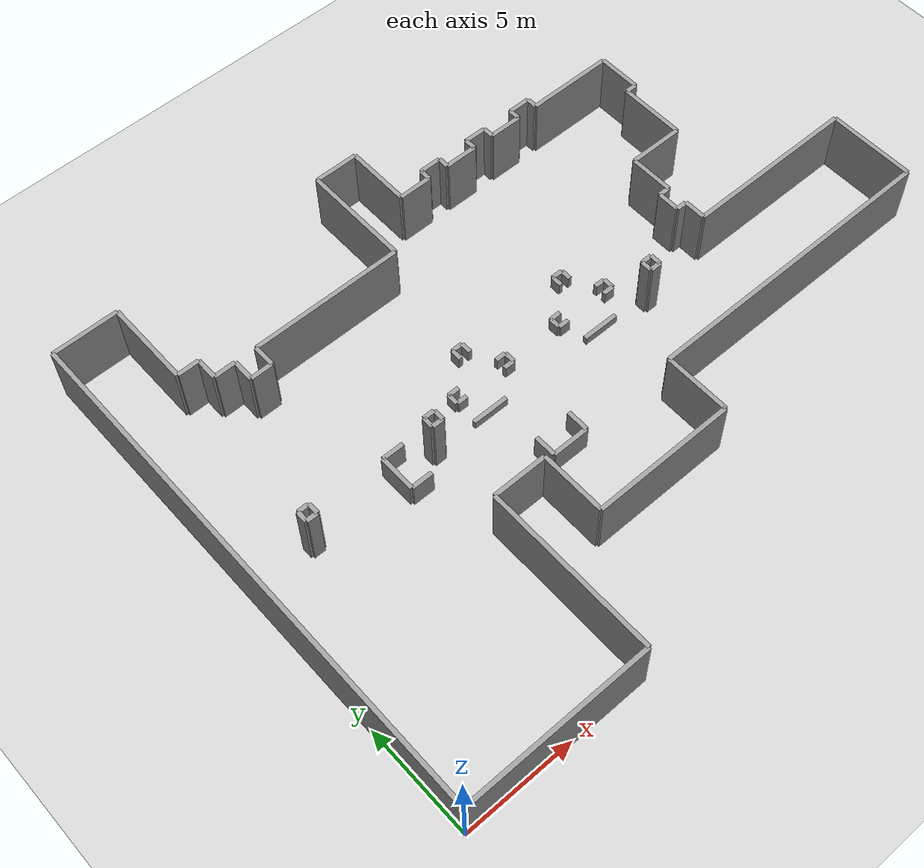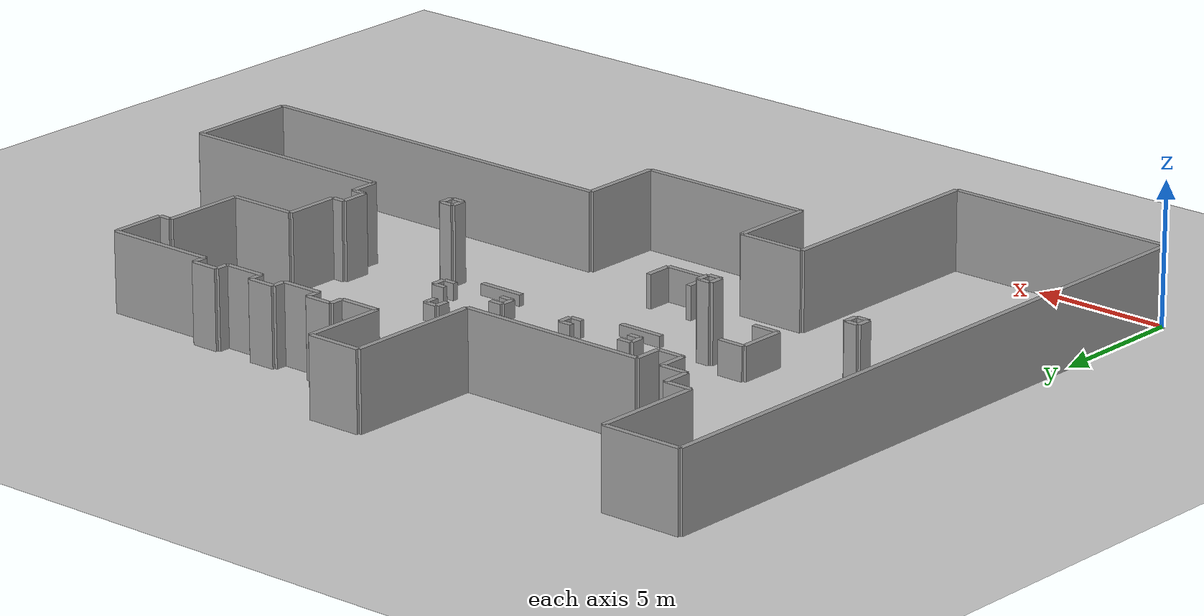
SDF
<sdf version="1.5">
 <world name="default">
  <include><uri>model://ground_plane</uri></include>
  <include><uri>model://sun</uri></include>
  <model name="grey_wall_1">
   <static>1</static>
   <link name="link">
    <pose>0.0 12.0  1.4 0 0 1.57</pose>
    <collision name="collision"><geometry><box><size>24.0 .2  2.8</size></box></geometry></collision>
    <visual name="visual">
     <cast_shadows>0</cast_shadows>
     <geometry><box><size>24.0 .2  2.8</size></box></geometry>
     <material>
      <script>
       <uri>model://grey_wall/materials/scripts</uri>
       <uri>model://grey_wall/materials/textures</uri>
       <name>vrc/grey_wall</name>
      </script>
     </material>
    </visual>
   </link>
  </model>
  <model name="grey_wall_2">
   <static>1</static>
   <link name="link">
    <pose>4.25 0.0  1.4 0 0 0.0</pose>
    <collision name="collision"><geometry><box><size>8.5 .2  2.8</size></box></geometry></collision>
    <visual name="visual">
     <cast_shadows>0</cast_shadows>
     <geometry><box><size>8.5 .2  2.8</size></box></geometry>
     <material>
      <script>
       <uri>model://grey_wall/materials/scripts</uri>
       <uri>model://grey_wall/materials/textures</uri>
       <name>vrc/grey_wall</name>
      </script>
     </material>
    </visual>
   </link>
  </model>
  <model name="grey_wall_3">
   <static>1</static>
   <link name="link">
    <pose>8.5 4.0  1.4 0 0 1.57</pose>
    <collision name="collision"><geometry><box><size>8.0 .2  2.8</size></box></geometry></collision>
    <visual name="visual">
     <cast_shadows>0</cast_shadows>
     <geometry><box><size>8.0 .2  2.8</size></box></geometry>
     <material>
      <script>
       <uri>model://grey_wall/materials/scripts</uri>
       <uri>model://grey_wall/materials/textures</uri>
       <name>vrc/grey_wall</name>
      </script>
     </material>
    </visual>
   </link>
  </model>
  <model name="grey_wall_4">
   <static>1</static>
   <link name="link">
    <pose>9.75 8.0  1.4 0 0 0.0</pose>
    <collision name="collision"><geometry><box><size>2.5 .2  2.8</size></box></geometry></collision>
    <visual name="visual">
     <cast_shadows>0</cast_shadows>
     <geometry><box><size>2.5 .2  2.8</size></box></geometry>
     <material>
      <script>
       <uri>model://grey_wall/materials/scripts</uri>
       <uri>model://grey_wall/materials/textures</uri>
       <name>vrc/grey_wall</name>
      </script>
     </material>
    </visual>
   </link>
  </model>
  <model name="grey_wall_5">
   <static>1</static>
   <link name="link">
    <pose>11.0 6.5  1.4 0 0 1.57</pose>
    <collision name="collision"><geometry><box><size>3.0 .2  2.8</size></box></geometry></collision>
    <visual name="visual">
     <cast_shadows>0</cast_shadows>
     <geometry><box><size>3.0 .2  2.8</size></box></geometry>
     <material>
      <script>
       <uri>model://grey_wall/materials/scripts</uri>
       <uri>model://grey_wall/materials/textures</uri>
       <name>vrc/grey_wall</name>
      </script>
     </material>
    </visual>
   </link>
  </model>
  <model name="grey_wall_6">
   <static>1</static>
   <link name="link">
    <pose>14.25 5.0  1.4 0 0 0.0</pose>
    <collision name="collision"><geometry><box><size>6.5 .2  2.8</size></box></geometry></collision>
    <visual name="visual">
     <cast_shadows>0</cast_shadows>
     <geometry><box><size>6.5 .2  2.8</size></box></geometry>
     <material>
      <script>
       <uri>model://grey_wall/materials/scripts</uri>
       <uri>model://grey_wall/materials/textures</uri>
       <name>vrc/grey_wall</name>
      </script>
     </material>
    </visual>
   </link>
  </model>
  <model name="grey_wall_7">
   <static>1</static>
   <link name="link">
    <pose>17.5 6.5  1.4 0 0 1.57</pose>
    <collision name="collision"><geometry><box><size>3.0 .2  2.8</size></box></geometry></collision>
    <visual name="visual">
     <cast_shadows>0</cast_shadows>
     <geometry><box><size>3.0 .2  2.8</size></box></geometry>
     <material>
      <script>
       <uri>model://grey_wall/materials/scripts</uri>
       <uri>model://grey_wall/materials/textures</uri>
       <name>vrc/grey_wall</name>
      </script>
     </material>
    </visual>
   </link>
  </model>
  <model name="grey_wall_8">
   <static>1</static>
   <link name="link">
    <pose>24.5 8.0  1.4 0 0 0.0</pose>
    <collision name="collision"><geometry><box><size>14.0 .2  2.8</size></box></geometry></collision>
    <visual name="visual">
     <cast_shadows>0</cast_shadows>
     <geometry><box><size>14.0 .2  2.8</size></box></geometry>
     <material>
      <script>
       <uri>model://grey_wall/materials/scripts</uri>
       <uri>model://grey_wall/materials/textures</uri>
       <name>vrc/grey_wall</name>
      </script>
     </material>
    </visual>
   </link>
  </model>
  <model name="grey_wall_9">
   <static>1</static>
   <link name="link">
    <pose>31.5 10.0  1.4 0 0 1.57</pose>
    <collision name="collision"><geometry><box><size>4.0 .2  2.8</size></box></geometry></collision>
    <visual name="visual">
     <cast_shadows>0</cast_shadows>
     <geometry><box><size>4.0 .2  2.8</size></box></geometry>
     <material>
      <script>
       <uri>model://grey_wall/materials/scripts</uri>
       <uri>model://grey_wall/materials/textures</uri>
       <name>vrc/grey_wall</name>
      </script>
     </material>
    </visual>
   </link>
  </model>
  <model name="grey_wall_10">
   <static>1</static>
   <link name="link">
    <pose>27.5 12.0  1.4 0 0 -0.0</pose>
    <collision name="collision"><geometry><box><size>8.0 .2  2.8</size></box></geometry></collision>
    <visual name="visual">
     <cast_shadows>0</cast_shadows>
     <geometry><box><size>8.0 .2  2.8</size></box></geometry>
     <material>
      <script>
       <uri>model://grey_wall/materials/scripts</uri>
       <uri>model://grey_wall/materials/textures</uri>
       <name>vrc/grey_wall</name>
      </script>
     </material>
    </visual>
   </link>
  </model>
  <model name="grey_wall_11">
   <static>1</static>
   <link name="link">
    <pose>23.5 12.5  1.4 0 0 1.57</pose>
    <collision name="collision"><geometry><box><size>1.0 .2  2.8</size></box></geometry></collision>
    <visual name="visual">
     <cast_shadows>0</cast_shadows>
     <geometry><box><size>1.0 .2  2.8</size></box></geometry>
     <material>
      <script>
       <uri>model://grey_wall/materials/scripts</uri>
       <uri>model://grey_wall/materials/textures</uri>
       <name>vrc/grey_wall</name>
      </script>
     </material>
    </visual>
   </link>
  </model>
  <model name="grey_wall_12">
   <static>1</static>
   <link name="link">
    <pose>23.25 13.0  1.4 0 0 -0.0</pose>
    <collision name="collision"><geometry><box><size>0.5 .2  2.8</size></box></geometry></collision>
    <visual name="visual">
     <cast_shadows>0</cast_shadows>
     <geometry><box><size>0.5 .2  2.8</size></box></geometry>
     <material>
      <script>
       <uri>model://grey_wall/materials/scripts</uri>
       <uri>model://grey_wall/materials/textures</uri>
       <name>vrc/grey_wall</name>
      </script>
     </material>
    </visual>
   </link>
  </model>
  <model name="grey_wall_13">
   <static>1</static>
   <link name="link">
    <pose>23.0 13.5  1.4 0 0 1.57</pose>
    <collision name="collision"><geometry><box><size>1.0 .2  2.8</size></box></geometry></collision>
    <visual name="visual">
     <cast_shadows>0</cast_shadows>
     <geometry><box><size>1.0 .2  2.8</size></box></geometry>
     <material>
      <script>
       <uri>model://grey_wall/materials/scripts</uri>
       <uri>model://grey_wall/materials/textures</uri>
       <name>vrc/grey_wall</name>
      </script>
     </material>
    </visual>
   </link>
  </model>
  <model name="grey_wall_14">
   <static>1</static>
   <link name="link">
    <pose>23.25 14.0  1.4 0 0 0.0</pose>
    <collision name="collision"><geometry><box><size>0.5 .2  2.8</size></box></geometry></collision>
    <visual name="visual">
     <cast_shadows>0</cast_shadows>
     <geometry><box><size>0.5 .2  2.8</size></box></geometry>
     <material>
      <script>
       <uri>model://grey_wall/materials/scripts</uri>
       <uri>model://grey_wall/materials/textures</uri>
       <name>vrc/grey_wall</name>
      </script>
     </material>
    </visual>
   </link>
  </model>
  <model name="grey_wall_15">
   <static>1</static>
   <link name="link">
    <pose>23.5 15.0  1.4 0 0 1.57</pose>
    <collision name="collision"><geometry><box><size>2.0 .2  2.8</size></box></geometry></collision>
    <visual name="visual">
     <cast_shadows>0</cast_shadows>
     <geometry><box><size>2.0 .2  2.8</size></box></geometry>
     <material>
      <script>
       <uri>model://grey_wall/materials/scripts</uri>
       <uri>model://grey_wall/materials/textures</uri>
       <name>vrc/grey_wall</name>
      </script>
     </material>
    </visual>
   </link>
  </model>
  <model name="grey_wall_16">
   <static>1</static>
   <link name="link">
    <pose>24.75 16.0  1.4 0 0 0.0</pose>
    <collision name="collision"><geometry><box><size>2.5 .2  2.8</size></box></geometry></collision>
    <visual name="visual">
     <cast_shadows>0</cast_shadows>
     <geometry><box><size>2.5 .2  2.8</size></box></geometry>
     <material>
      <script>
       <uri>model://grey_wall/materials/scripts</uri>
       <uri>model://grey_wall/materials/textures</uri>
       <name>vrc/grey_wall</name>
      </script>
     </material>
    </visual>
   </link>
  </model>
  <model name="grey_wall_17">
   <static>1</static>
   <link name="link">
    <pose>26.0 17.5  1.4 0 0 1.57</pose>
    <collision name="collision"><geometry><box><size>3.0 .2  2.8</size></box></geometry></collision>
    <visual name="visual">
     <cast_shadows>0</cast_shadows>
     <geometry><box><size>3.0 .2  2.8</size></box></geometry>
     <material>
      <script>
       <uri>model://grey_wall/materials/scripts</uri>
       <uri>model://grey_wall/materials/textures</uri>
       <name>vrc/grey_wall</name>
      </script>
     </material>
    </visual>
   </link>
  </model>
  <model name="grey_wall_18">
   <static>1</static>
   <link name="link">
    <pose>26.25 19.0  1.4 0 0 0.0</pose>
    <collision name="collision"><geometry><box><size>0.5 .2  2.8</size></box></geometry></collision>
    <visual name="visual">
     <cast_shadows>0</cast_shadows>
     <geometry><box><size>0.5 .2  2.8</size></box></geometry>
     <material>
      <script>
       <uri>model://grey_wall/materials/scripts</uri>
       <uri>model://grey_wall/materials/textures</uri>
       <name>vrc/grey_wall</name>
      </script>
     </material>
    </visual>
   </link>
  </model>
  <model name="grey_wall_19">
   <static>1</static>
   <link name="link">
    <pose>26.5 20.0  1.4 0 0 1.57</pose>
    <collision name="collision"><geometry><box><size>2.0 .2  2.8</size></box></geometry></collision>
    <visual name="visual">
     <cast_shadows>0</cast_shadows>
     <geometry><box><size>2.0 .2  2.8</size></box></geometry>
     <material>
      <script>
       <uri>model://grey_wall/materials/scripts</uri>
       <uri>model://grey_wall/materials/textures</uri>
       <name>vrc/grey_wall</name>
      </script>
     </material>
    </visual>
   </link>
  </model>
  <model name="grey_wall_20">
   <static>1</static>
   <link name="link">
    <pose>24.5 21.0  1.4 0 0 -0.0</pose>
    <collision name="collision"><geometry><box><size>4.0 .2  2.8</size></box></geometry></collision>
    <visual name="visual">
     <cast_shadows>0</cast_shadows>
     <geometry><box><size>4.0 .2  2.8</size></box></geometry>
     <material>
      <script>
       <uri>model://grey_wall/materials/scripts</uri>
       <uri>model://grey_wall/materials/textures</uri>
       <name>vrc/grey_wall</name>
      </script>
     </material>
    </visual>
   </link>
  </model>
  <model name="grey_wall_21">
   <static>1</static>
   <link name="link">
    <pose>22.5 21.25  1.4 0 0 1.57</pose>
    <collision name="collision"><geometry><box><size>0.5 .2  2.8</size></box></geometry></collision>
    <visual name="visual">
     <cast_shadows>0</cast_shadows>
     <geometry><box><size>0.5 .2  2.8</size></box></geometry>
     <material>
      <script>
       <uri>model://grey_wall/materials/scripts</uri>
       <uri>model://grey_wall/materials/textures</uri>
       <name>vrc/grey_wall</name>
      </script>
     </material>
    </visual>
   </link>
  </model>
  <model name="grey_wall_22">
   <static>1</static>
   <link name="link">
    <pose>22.0 21.5  1.4 0 0 -0.0</pose>
    <collision name="collision"><geometry><box><size>1.0 .2  2.8</size></box></geometry></collision>
    <visual name="visual">
     <cast_shadows>0</cast_shadows>
     <geometry><box><size>1.0 .2  2.8</size></box></geometry>
     <material>
      <script>
       <uri>model://grey_wall/materials/scripts</uri>
       <uri>model://grey_wall/materials/textures</uri>
       <name>vrc/grey_wall</name>
      </script>
     </material>
    </visual>
   </link>
  </model>
  <model name="grey_wall_23">
   <static>1</static>
   <link name="link">
    <pose>21.5 21.25  1.4 0 0 1.57</pose>
    <collision name="collision"><geometry><box><size>0.5 .2  2.8</size></box></geometry></collision>
    <visual name="visual">
     <cast_shadows>0</cast_shadows>
     <geometry><box><size>0.5 .2  2.8</size></box></geometry>
     <material>
      <script>
       <uri>model://grey_wall/materials/scripts</uri>
       <uri>model://grey_wall/materials/textures</uri>
       <name>vrc/grey_wall</name>
      </script>
     </material>
    </visual>
   </link>
  </model>
  <model name="grey_wall_24">
   <static>1</static>
   <link name="link">
    <pose>20.75 21.0  1.4 0 0 -0.0</pose>
    <collision name="collision"><geometry><box><size>1.5 .2  2.8</size></box></geometry></collision>
    <visual name="visual">
     <cast_shadows>0</cast_shadows>
     <geometry><box><size>1.5 .2  2.8</size></box></geometry>
     <material>
      <script>
       <uri>model://grey_wall/materials/scripts</uri>
       <uri>model://grey_wall/materials/textures</uri>
       <name>vrc/grey_wall</name>
      </script>
     </material>
    </visual>
   </link>
  </model>
  <model name="grey_wall_25">
   <static>1</static>
   <link name="link">
    <pose>20.0 21.25  1.4 0 0 1.57</pose>
    <collision name="collision"><geometry><box><size>0.5 .2  2.8</size></box></geometry></collision>
    <visual name="visual">
     <cast_shadows>0</cast_shadows>
     <geometry><box><size>0.5 .2  2.8</size></box></geometry>
     <material>
      <script>
       <uri>model://grey_wall/materials/scripts</uri>
       <uri>model://grey_wall/materials/textures</uri>
       <name>vrc/grey_wall</name>
      </script>
     </material>
    </visual>
   </link>
  </model>
  <model name="grey_wall_26">
   <static>1</static>
   <link name="link">
    <pose>19.5 21.5  1.4 0 0 -0.0</pose>
    <collision name="collision"><geometry><box><size>1.0 .2  2.8</size></box></geometry></collision>
    <visual name="visual">
     <cast_shadows>0</cast_shadows>
     <geometry><box><size>1.0 .2  2.8</size></box></geometry>
     <material>
      <script>
       <uri>model://grey_wall/materials/scripts</uri>
       <uri>model://grey_wall/materials/textures</uri>
       <name>vrc/grey_wall</name>
      </script>
     </material>
    </visual>
   </link>
  </model>
  <model name="grey_wall_27">
   <static>1</static>
   <link name="link">
    <pose>19.0 21.25  1.4 0 0 1.57</pose>
    <collision name="collision"><geometry><box><size>0.5 .2  2.8</size></box></geometry></collision>
    <visual name="visual">
     <cast_shadows>0</cast_shadows>
     <geometry><box><size>0.5 .2  2.8</size></box></geometry>
     <material>
      <script>
       <uri>model://grey_wall/materials/scripts</uri>
       <uri>model://grey_wall/materials/textures</uri>
       <name>vrc/grey_wall</name>
      </script>
     </material>
    </visual>
   </link>
  </model>
  <model name="grey_wall_28">
   <static>1</static>
   <link name="link">
    <pose>18.25 21.0  1.4 0 0 -0.0</pose>
    <collision name="collision"><geometry><box><size>1.5 .2  2.8</size></box></geometry></collision>
    <visual name="visual">
     <cast_shadows>0</cast_shadows>
     <geometry><box><size>1.5 .2  2.8</size></box></geometry>
     <material>
      <script>
       <uri>model://grey_wall/materials/scripts</uri>
       <uri>model://grey_wall/materials/textures</uri>
       <name>vrc/grey_wall</name>
      </script>
     </material>
    </visual>
   </link>
  </model>
  <model name="grey_wall_29">
   <static>1</static>
   <link name="link">
    <pose>17.5 21.25  1.4 0 0 1.57</pose>
    <collision name="collision"><geometry><box><size>0.5 .2  2.8</size></box></geometry></collision>
    <visual name="visual">
     <cast_shadows>0</cast_shadows>
     <geometry><box><size>0.5 .2  2.8</size></box></geometry>
     <material>
      <script>
       <uri>model://grey_wall/materials/scripts</uri>
       <uri>model://grey_wall/materials/textures</uri>
       <name>vrc/grey_wall</name>
      </script>
     </material>
    </visual>
   </link>
  </model>
  <model name="grey_wall_30">
   <static>1</static>
   <link name="link">
    <pose>17.0 21.5  1.4 0 0 -0.0</pose>
    <collision name="collision"><geometry><box><size>1.0 .2  2.8</size></box></geometry></collision>
    <visual name="visual">
     <cast_shadows>0</cast_shadows>
     <geometry><box><size>1.0 .2  2.8</size></box></geometry>
     <material>
      <script>
       <uri>model://grey_wall/materials/scripts</uri>
       <uri>model://grey_wall/materials/textures</uri>
       <name>vrc/grey_wall</name>
      </script>
     </material>
    </visual>
   </link>
  </model>
  <model name="grey_wall_31">
   <static>1</static>
   <link name="link">
    <pose>16.5 21.25  1.4 0 0 1.57</pose>
    <collision name="collision"><geometry><box><size>0.5 .2  2.8</size></box></geometry></collision>
    <visual name="visual">
     <cast_shadows>0</cast_shadows>
     <geometry><box><size>0.5 .2  2.8</size></box></geometry>
     <material>
      <script>
       <uri>model://grey_wall/materials/scripts</uri>
       <uri>model://grey_wall/materials/textures</uri>
       <name>vrc/grey_wall</name>
      </script>
     </material>
    </visual>
   </link>
  </model>
  <model name="grey_wall_32">
   <static>1</static>
   <link name="link">
    <pose>15.75 21.0  1.4 0 0 -0.0</pose>
    <collision name="collision"><geometry><box><size>1.5 .2  2.8</size></box></geometry></collision>
    <visual name="visual">
     <cast_shadows>0</cast_shadows>
     <geometry><box><size>1.5 .2  2.8</size></box></geometry>
     <material>
      <script>
       <uri>model://grey_wall/materials/scripts</uri>
       <uri>model://grey_wall/materials/textures</uri>
       <name>vrc/grey_wall</name>
      </script>
     </material>
    </visual>
   </link>
  </model>
  <model name="grey_wall_33">
   <static>1</static>
   <link name="link">
    <pose>15.0 22.5  1.4 0 0 1.57</pose>
    <collision name="collision"><geometry><box><size>3.0 .2  2.8</size></box></geometry></collision>
    <visual name="visual">
     <cast_shadows>0</cast_shadows>
     <geometry><box><size>3.0 .2  2.8</size></box></geometry>
     <material>
      <script>
       <uri>model://grey_wall/materials/scripts</uri>
       <uri>model://grey_wall/materials/textures</uri>
       <name>vrc/grey_wall</name>
      </script>
     </material>
    </visual>
   </link>
  </model>
  <model name="grey_wall_34">
   <static>1</static>
   <link name="link">
    <pose>14.0 24.0  1.4 0 0 -0.0</pose>
    <collision name="collision"><geometry><box><size>2.0 .2  2.8</size></box></geometry></collision>
    <visual name="visual">
     <cast_shadows>0</cast_shadows>
     <geometry><box><size>2.0 .2  2.8</size></box></geometry>
     <material>
      <script>
       <uri>model://grey_wall/materials/scripts</uri>
       <uri>model://grey_wall/materials/textures</uri>
       <name>vrc/grey_wall</name>
      </script>
     </material>
    </visual>
   </link>
  </model>
  <model name="grey_wall_35">
   <static>1</static>
   <link name="link">
    <pose>13.0 21.5  1.4 0 0 1.57</pose>
    <collision name="collision"><geometry><box><size>5.0 .2  2.8</size></box></geometry></collision>
    <visual name="visual">
     <cast_shadows>0</cast_shadows>
     <geometry><box><size>5.0 .2  2.8</size></box></geometry>
     <material>
      <script>
       <uri>model://grey_wall/materials/scripts</uri>
       <uri>model://grey_wall/materials/textures</uri>
       <name>vrc/grey_wall</name>
      </script>
     </material>
    </visual>
   </link>
  </model>
  <model name="grey_wall_36">
   <static>1</static>
   <link name="link">
    <pose>9.5 19.0  1.4 0 0 -0.0</pose>
    <collision name="collision"><geometry><box><size>7.0 .2  2.8</size></box></geometry></collision>
    <visual name="visual">
     <cast_shadows>0</cast_shadows>
     <geometry><box><size>7.0 .2  2.8</size></box></geometry>
     <material>
      <script>
       <uri>model://grey_wall/materials/scripts</uri>
       <uri>model://grey_wall/materials/textures</uri>
       <name>vrc/grey_wall</name>
      </script>
     </material>
    </visual>
   </link>
  </model>
  <model name="grey_wall_37">
   <static>1</static>
   <link name="link">
    <pose>6.0 18.5  1.4 0 0 1.57</pose>
    <collision name="collision"><geometry><box><size>1.0 .2  2.8</size></box></geometry></collision>
    <visual name="visual">
     <cast_shadows>0</cast_shadows>
     <geometry><box><size>1.0 .2  2.8</size></box></geometry>
     <material>
      <script>
       <uri>model://grey_wall/materials/scripts</uri>
       <uri>model://grey_wall/materials/textures</uri>
       <name>vrc/grey_wall</name>
      </script>
     </material>
    </visual>
   </link>
  </model>
  <model name="grey_wall_38">
   <static>1</static>
   <link name="link">
    <pose>5.5 18.0  1.4 0 0 -0.0</pose>
    <collision name="collision"><geometry><box><size>1.0 .2  2.8</size></box></geometry></collision>
    <visual name="visual">
     <cast_shadows>0</cast_shadows>
     <geometry><box><size>1.0 .2  2.8</size></box></geometry>
     <material>
      <script>
       <uri>model://grey_wall/materials/scripts</uri>
       <uri>model://grey_wall/materials/textures</uri>
       <name>vrc/grey_wall</name>
      </script>
     </material>
    </visual>
   </link>
  </model>
  <model name="grey_wall_39">
   <static>1</static>
   <link name="link">
    <pose>5.0 18.5  1.4 0 0 1.57</pose>
    <collision name="collision"><geometry><box><size>1.0 .2  2.8</size></box></geometry></collision>
    <visual name="visual">
     <cast_shadows>0</cast_shadows>
     <geometry><box><size>1.0 .2  2.8</size></box></geometry>
     <material>
      <script>
       <uri>model://grey_wall/materials/scripts</uri>
       <uri>model://grey_wall/materials/textures</uri>
       <name>vrc/grey_wall</name>
      </script>
     </material>
    </visual>
   </link>
  </model>
  <model name="grey_wall_40">
   <static>1</static>
   <link name="link">
    <pose>4.5 19.0  1.4 0 0 -0.0</pose>
    <collision name="collision"><geometry><box><size>1.0 .2  2.8</size></box></geometry></collision>
    <visual name="visual">
     <cast_shadows>0</cast_shadows>
     <geometry><box><size>1.0 .2  2.8</size></box></geometry>
     <material>
      <script>
       <uri>model://grey_wall/materials/scripts</uri>
       <uri>model://grey_wall/materials/textures</uri>
       <name>vrc/grey_wall</name>
      </script>
     </material>
    </visual>
   </link>
  </model>
  <model name="grey_wall_41">
   <static>1</static>
   <link name="link">
    <pose>4.0 19.5  1.4 0 0 1.57</pose>
    <collision name="collision"><geometry><box><size>1.0 .2  2.8</size></box></geometry></collision>
    <visual name="visual">
     <cast_shadows>0</cast_shadows>
     <geometry><box><size>1.0 .2  2.8</size></box></geometry>
     <material>
      <script>
       <uri>model://grey_wall/materials/scripts</uri>
       <uri>model://grey_wall/materials/textures</uri>
       <name>vrc/grey_wall</name>
      </script>
     </material>
    </visual>
   </link>
  </model>
  <model name="grey_wall_42">
   <static>1</static>
   <link name="link">
    <pose>3.5 20.0  1.4 0 0 -0.0</pose>
    <collision name="collision"><geometry><box><size>1.0 .2  2.8</size></box></geometry></collision>
    <visual name="visual">
     <cast_shadows>0</cast_shadows>
     <geometry><box><size>1.0 .2  2.8</size></box></geometry>
     <material>
      <script>
       <uri>model://grey_wall/materials/scripts</uri>
       <uri>model://grey_wall/materials/textures</uri>
       <name>vrc/grey_wall</name>
      </script>
     </material>
    </visual>
   </link>
  </model>
  <model name="grey_wall_43">
   <static>1</static>
   <link name="link">
    <pose>3.0 22.0  1.4 0 0 1.57</pose>
    <collision name="collision"><geometry><box><size>4.0 .2  2.8</size></box></geometry></collision>
    <visual name="visual">
     <cast_shadows>0</cast_shadows>
     <geometry><box><size>4.0 .2  2.8</size></box></geometry>
     <material>
      <script>
       <uri>model://grey_wall/materials/scripts</uri>
       <uri>model://grey_wall/materials/textures</uri>
       <name>vrc/grey_wall</name>
      </script>
     </material>
    </visual>
   </link>
  </model>
  <model name="grey_wall_44">
   <static>1</static>
   <link name="link">
    <pose>1.5 24.0  1.4 0 0 -0.0</pose>
    <collision name="collision"><geometry><box><size>3.0 .2  2.8</size></box></geometry></collision>
    <visual name="visual">
     <cast_shadows>0</cast_shadows>
     <geometry><box><size>3.0 .2  2.8</size></box></geometry>
     <material>
      <script>
       <uri>model://grey_wall/materials/scripts</uri>
       <uri>model://grey_wall/materials/textures</uri>
       <name>vrc/grey_wall</name>
      </script>
     </material>
    </visual>
   </link>
  </model>
  <model name="grey_wall_45">
   <static>1</static>
   <link name="link">
    <pose>3.0 11.75  1.4 0 0 0.0</pose>
    <collision name="collision"><geometry><box><size>0.5 .2  2.8</size></box></geometry></collision>
    <visual name="visual">
     <cast_shadows>0</cast_shadows>
     <geometry><box><size>0.5 .2  2.8</size></box></geometry>
     <material>
      <script>
       <uri>model://grey_wall/materials/scripts</uri>
       <uri>model://grey_wall/materials/textures</uri>
       <name>vrc/grey_wall</name>
      </script>
     </material>
    </visual>
   </link>
  </model>
  <model name="grey_wall_46">
   <static>1</static>
   <link name="link">
    <pose>3.25 12.0  1.4 0 0 1.57</pose>
    <collision name="collision"><geometry><box><size>0.5 .2  2.8</size></box></geometry></collision>
    <visual name="visual">
     <cast_shadows>0</cast_shadows>
     <geometry><box><size>0.5 .2  2.8</size></box></geometry>
     <material>
      <script>
       <uri>model://grey_wall/materials/scripts</uri>
       <uri>model://grey_wall/materials/textures</uri>
       <name>vrc/grey_wall</name>
      </script>
     </material>
    </visual>
   </link>
  </model>
  <model name="grey_wall_47">
   <static>1</static>
   <link name="link">
    <pose>3.0 12.25  1.4 0 0 -0.0</pose>
    <collision name="collision"><geometry><box><size>0.5 .2  2.8</size></box></geometry></collision>
    <visual name="visual">
     <cast_shadows>0</cast_shadows>
     <geometry><box><size>0.5 .2  2.8</size></box></geometry>
     <material>
      <script>
       <uri>model://grey_wall/materials/scripts</uri>
       <uri>model://grey_wall/materials/textures</uri>
       <name>vrc/grey_wall</name>
      </script>
     </material>
    </visual>
   </link>
  </model>
  <model name="grey_wall_48">
   <static>1</static>
   <link name="link">
    <pose>2.75 12.0  1.4 0 0 1.57</pose>
    <collision name="collision"><geometry><box><size>0.5 .2  2.8</size></box></geometry></collision>
    <visual name="visual">
     <cast_shadows>0</cast_shadows>
     <geometry><box><size>0.5 .2  2.8</size></box></geometry>
     <material>
      <script>
       <uri>model://grey_wall/materials/scripts</uri>
       <uri>model://grey_wall/materials/textures</uri>
       <name>vrc/grey_wall</name>
      </script>
     </material>
    </visual>
   </link>
  </model>
  <model name="grey_wall_49">
   <static>1</static>
   <link name="link">
    <pose>7.5 11.0  0.6 0 0 0.0</pose>
    <collision name="collision"><geometry><box><size>1.0 .2  1.2</size></box></geometry></collision>
    <visual name="visual">
     <cast_shadows>0</cast_shadows>
     <geometry><box><size>1.0 .2  1.2</size></box></geometry>
     <material>
      <script>
       <uri>model://grey_wall/materials/scripts</uri>
       <uri>model://grey_wall/materials/textures</uri>
       <name>vrc/grey_wall</name>
      </script>
     </material>
    </visual>
   </link>
  </model>
  <model name="grey_wall_50">
   <static>1</static>
   <link name="link">
    <pose>7.0 11.85  0.6 0 0 1.57</pose>
    <collision name="collision"><geometry><box><size>1.7 .2  1.2</size></box></geometry></collision>
    <visual name="visual">
     <cast_shadows>0</cast_shadows>
     <geometry><box><size>1.7 .2  1.2</size></box></geometry>
     <material>
      <script>
       <uri>model://grey_wall/materials/scripts</uri>
       <uri>model://grey_wall/materials/textures</uri>
       <name>vrc/grey_wall</name>
      </script>
     </material>
    </visual>
   </link>
  </model>
  <model name="grey_wall_51">
   <static>1</static>
   <link name="link">
    <pose>7.5 12.7  0.6 0 0 0.0</pose>
    <collision name="collision"><geometry><box><size>1.0 .2  1.2</size></box></geometry></collision>
    <visual name="visual">
     <cast_shadows>0</cast_shadows>
     <geometry><box><size>1.0 .2  1.2</size></box></geometry>
     <material>
      <script>
       <uri>model://grey_wall/materials/scripts</uri>
       <uri>model://grey_wall/materials/textures</uri>
       <name>vrc/grey_wall</name>
      </script>
     </material>
    </visual>
   </link>
  </model>
  <model name="grey_wall_52">
   <static>1</static>
   <link name="link">
    <pose>9.0 11.75  1.4 0 0 0.0</pose>
    <collision name="collision"><geometry><box><size>0.5 .2  2.8</size></box></geometry></collision>
    <visual name="visual">
     <cast_shadows>0</cast_shadows>
     <geometry><box><size>0.5 .2  2.8</size></box></geometry>
     <material>
      <script>
       <uri>model://grey_wall/materials/scripts</uri>
       <uri>model://grey_wall/materials/textures</uri>
       <name>vrc/grey_wall</name>
      </script>
     </material>
    </visual>
   </link>
  </model>
  <model name="grey_wall_53">
   <static>1</static>
   <link name="link">
    <pose>9.25 12.0  1.4 0 0 1.57</pose>
    <collision name="collision"><geometry><box><size>0.5 .2  2.8</size></box></geometry></collision>
    <visual name="visual">
     <cast_shadows>0</cast_shadows>
     <geometry><box><size>0.5 .2  2.8</size></box></geometry>
     <material>
      <script>
       <uri>model://grey_wall/materials/scripts</uri>
       <uri>model://grey_wall/materials/textures</uri>
       <name>vrc/grey_wall</name>
      </script>
     </material>
    </visual>
   </link>
  </model>
  <model name="grey_wall_54">
   <static>1</static>
   <link name="link">
    <pose>9.0 12.25  1.4 0 0 -0.0</pose>
    <collision name="collision"><geometry><box><size>0.5 .2  2.8</size></box></geometry></collision>
    <visual name="visual">
     <cast_shadows>0</cast_shadows>
     <geometry><box><size>0.5 .2  2.8</size></box></geometry>
     <material>
      <script>
       <uri>model://grey_wall/materials/scripts</uri>
       <uri>model://grey_wall/materials/textures</uri>
       <name>vrc/grey_wall</name>
      </script>
     </material>
    </visual>
   </link>
  </model>
  <model name="grey_wall_55">
   <static>1</static>
   <link name="link">
    <pose>8.75 12.0  1.4 0 0 1.57</pose>
    <collision name="collision"><geometry><box><size>0.5 .2  2.8</size></box></geometry></collision>
    <visual name="visual">
     <cast_shadows>0</cast_shadows>
     <geometry><box><size>0.5 .2  2.8</size></box></geometry>
     <material>
      <script>
       <uri>model://grey_wall/materials/scripts</uri>
       <uri>model://grey_wall/materials/textures</uri>
       <name>vrc/grey_wall</name>
      </script>
     </material>
    </visual>
   </link>
  </model>
  <model name="grey_wall_56">
   <static>1</static>
   <link name="link">
    <pose>12.85 8.5  0.6 0 0 0.0</pose>
    <collision name="collision"><geometry><box><size>1.7 .2  1.2</size></box></geometry></collision>
    <visual name="visual">
     <cast_shadows>0</cast_shadows>
     <geometry><box><size>1.7 .2  1.2</size></box></geometry>
     <material>
      <script>
       <uri>model://grey_wall/materials/scripts</uri>
       <uri>model://grey_wall/materials/textures</uri>
       <name>vrc/grey_wall</name>
      </script>
     </material>
    </visual>
   </link>
  </model>
  <model name="grey_wall_57">
   <static>1</static>
   <link name="link">
    <pose>13.7 9.0  0.6 0 0 1.57</pose>
    <collision name="collision"><geometry><box><size>1.0 .2  1.2</size></box></geometry></collision>
    <visual name="visual">
     <cast_shadows>0</cast_shadows>
     <geometry><box><size>1.0 .2  1.2</size></box></geometry>
     <material>
      <script>
       <uri>model://grey_wall/materials/scripts</uri>
       <uri>model://grey_wall/materials/textures</uri>
       <name>vrc/grey_wall</name>
      </script>
     </material>
    </visual>
   </link>
  </model>
  <model name="grey_wall_58">
   <static>1</static>
   <link name="link">
    <pose>12.0 9.0  0.6 0 0 1.57</pose>
    <collision name="collision"><geometry><box><size>1.0 .2  1.2</size></box></geometry></collision>
    <visual name="visual">
     <cast_shadows>0</cast_shadows>
     <geometry><box><size>1.0 .2  1.2</size></box></geometry>
     <material>
      <script>
       <uri>model://grey_wall/materials/scripts</uri>
       <uri>model://grey_wall/materials/textures</uri>
       <name>vrc/grey_wall</name>
      </script>
     </material>
    </visual>
   </link>
  </model>
  <model name="grey_wall_59">
   <static>1</static>
   <link name="link">
    <pose>11.85 12.0  0.2 0 0 0.0</pose>
    <collision name="collision"><geometry><box><size>1.7 .2  0.4</size></box></geometry></collision>
    <visual name="visual">
     <cast_shadows>0</cast_shadows>
     <geometry><box><size>1.7 .2  0.4</size></box></geometry>
     <material>
      <script>
       <uri>model://grey_wall/materials/scripts</uri>
       <uri>model://grey_wall/materials/textures</uri>
       <name>vrc/grey_wall</name>
      </script>
     </material>
    </visual>
   </link>
  </model>
  <model name="grey_wall_60">
   <static>1</static>
   <link name="link">
    <pose>11.25 13.0  0.3 0 0 0.0</pose>
    <collision name="collision"><geometry><box><size>0.5 .2  0.6</size></box></geometry></collision>
    <visual name="visual">
     <cast_shadows>0</cast_shadows>
     <geometry><box><size>0.5 .2  0.6</size></box></geometry>
     <material>
      <script>
       <uri>model://grey_wall/materials/scripts</uri>
       <uri>model://grey_wall/materials/textures</uri>
       <name>vrc/grey_wall</name>
      </script>
     </material>
    </visual>
   </link>
  </model>
  <model name="grey_wall_61">
   <static>1</static>
   <link name="link">
    <pose>11.0 13.25  0.3 0 0 1.57</pose>
    <collision name="collision"><geometry><box><size>0.5 .2  0.6</size></box></geometry></collision>
    <visual name="visual">
     <cast_shadows>0</cast_shadows>
     <geometry><box><size>0.5 .2  0.6</size></box></geometry>
     <material>
      <script>
       <uri>model://grey_wall/materials/scripts</uri>
       <uri>model://grey_wall/materials/textures</uri>
       <name>vrc/grey_wall</name>
      </script>
     </material>
    </visual>
   </link>
  </model>
  <model name="grey_wall_62">
   <static>1</static>
   <link name="link">
    <pose>11.25 13.5  0.3 0 0 0.0</pose>
    <collision name="collision"><geometry><box><size>0.5 .2  0.6</size></box></geometry></collision>
    <visual name="visual">
     <cast_shadows>0</cast_shadows>
     <geometry><box><size>0.5 .2  0.6</size></box></geometry>
     <material>
      <script>
       <uri>model://grey_wall/materials/scripts</uri>
       <uri>model://grey_wall/materials/textures</uri>
       <name>vrc/grey_wall</name>
      </script>
     </material>
    </visual>
   </link>
  </model>
  <model name="grey_wall_63">
   <static>1</static>
   <link name="link">
    <pose>12.5 14.75  0.3 0 0 1.57</pose>
    <collision name="collision"><geometry><box><size>0.5 .2  0.6</size></box></geometry></collision>
    <visual name="visual">
     <cast_shadows>0</cast_shadows>
     <geometry><box><size>0.5 .2  0.6</size></box></geometry>
     <material>
      <script>
       <uri>model://grey_wall/materials/scripts</uri>
       <uri>model://grey_wall/materials/textures</uri>
       <name>vrc/grey_wall</name>
      </script>
     </material>
    </visual>
   </link>
  </model>
  <model name="grey_wall_64">
   <static>1</static>
   <link name="link">
    <pose>12.75 15.0  0.3 0 0 0.0</pose>
    <collision name="collision"><geometry><box><size>0.5 .2  0.6</size></box></geometry></collision>
    <visual name="visual">
     <cast_shadows>0</cast_shadows>
     <geometry><box><size>0.5 .2  0.6</size></box></geometry>
     <material>
      <script>
       <uri>model://grey_wall/materials/scripts</uri>
       <uri>model://grey_wall/materials/textures</uri>
       <name>vrc/grey_wall</name>
      </script>
     </material>
    </visual>
   </link>
  </model>
  <model name="grey_wall_65">
   <static>1</static>
   <link name="link">
    <pose>13.0 14.75  0.3 0 0 1.57</pose>
    <collision name="collision"><geometry><box><size>0.5 .2  0.6</size></box></geometry></collision>
    <visual name="visual">
     <cast_shadows>0</cast_shadows>
     <geometry><box><size>0.5 .2  0.6</size></box></geometry>
     <material>
      <script>
       <uri>model://grey_wall/materials/scripts</uri>
       <uri>model://grey_wall/materials/textures</uri>
       <name>vrc/grey_wall</name>
      </script>
     </material>
    </visual>
   </link>
  </model>
  <model name="grey_wall_66">
   <static>1</static>
   <link name="link">
    <pose>13.75 13.0  0.3 0 0 0.0</pose>
    <collision name="collision"><geometry><box><size>0.5 .2  0.6</size></box></geometry></collision>
    <visual name="visual">
     <cast_shadows>0</cast_shadows>
     <geometry><box><size>0.5 .2  0.6</size></box></geometry>
     <material>
      <script>
       <uri>model://grey_wall/materials/scripts</uri>
       <uri>model://grey_wall/materials/textures</uri>
       <name>vrc/grey_wall</name>
      </script>
     </material>
    </visual>
   </link>
  </model>
  <model name="grey_wall_67">
   <static>1</static>
   <link name="link">
    <pose>14.0 13.25  0.3 0 0 1.57</pose>
    <collision name="collision"><geometry><box><size>0.5 .2  0.6</size></box></geometry></collision>
    <visual name="visual">
     <cast_shadows>0</cast_shadows>
     <geometry><box><size>0.5 .2  0.6</size></box></geometry>
     <material>
      <script>
       <uri>model://grey_wall/materials/scripts</uri>
       <uri>model://grey_wall/materials/textures</uri>
       <name>vrc/grey_wall</name>
      </script>
     </material>
    </visual>
   </link>
  </model>
  <model name="grey_wall_68">
   <static>1</static>
   <link name="link">
    <pose>13.75 13.5  0.3 0 0 -0.0</pose>
    <collision name="collision"><geometry><box><size>0.5 .2  0.6</size></box></geometry></collision>
    <visual name="visual">
     <cast_shadows>0</cast_shadows>
     <geometry><box><size>0.5 .2  0.6</size></box></geometry>
     <material>
      <script>
       <uri>model://grey_wall/materials/scripts</uri>
       <uri>model://grey_wall/materials/textures</uri>
       <name>vrc/grey_wall</name>
      </script>
     </material>
    </visual>
   </link>
  </model>
  <model name="grey_wall_69">
   <static>1</static>
   <link name="link">
    <pose>17.85 12.0  0.2 0 0 0.0</pose>
    <collision name="collision"><geometry><box><size>1.7 .2  0.4</size></box></geometry></collision>
    <visual name="visual">
     <cast_shadows>0</cast_shadows>
     <geometry><box><size>1.7 .2  0.4</size></box></geometry>
     <material>
      <script>
       <uri>model://grey_wall/materials/scripts</uri>
       <uri>model://grey_wall/materials/textures</uri>
       <name>vrc/grey_wall</name>
      </script>
     </material>
    </visual>
   </link>
  </model>
  <model name="grey_wall_70">
   <static>1</static>
   <link name="link">
    <pose>16.75 13.0  0.3 0 0 0.0</pose>
    <collision name="collision"><geometry><box><size>0.5 .2  0.6</size></box></geometry></collision>
    <visual name="visual">
     <cast_shadows>0</cast_shadows>
     <geometry><box><size>0.5 .2  0.6</size></box></geometry>
     <material>
      <script>
       <uri>model://grey_wall/materials/scripts</uri>
       <uri>model://grey_wall/materials/textures</uri>
       <name>vrc/grey_wall</name>
      </script>
     </material>
    </visual>
   </link>
  </model>
  <model name="grey_wall_71">
   <static>1</static>
   <link name="link">
    <pose>16.5 13.25  0.3 0 0 1.57</pose>
    <collision name="collision"><geometry><box><size>0.5 .2  0.6</size></box></geometry></collision>
    <visual name="visual">
     <cast_shadows>0</cast_shadows>
     <geometry><box><size>0.5 .2  0.6</size></box></geometry>
     <material>
      <script>
       <uri>model://grey_wall/materials/scripts</uri>
       <uri>model://grey_wall/materials/textures</uri>
       <name>vrc/grey_wall</name>
      </script>
     </material>
    </visual>
   </link>
  </model>
  <model name="grey_wall_72">
   <static>1</static>
   <link name="link">
    <pose>16.75 13.5  0.3 0 0 0.0</pose>
    <collision name="collision"><geometry><box><size>0.5 .2  0.6</size></box></geometry></collision>
    <visual name="visual">
     <cast_shadows>0</cast_shadows>
     <geometry><box><size>0.5 .2  0.6</size></box></geometry>
     <material>
      <script>
       <uri>model://grey_wall/materials/scripts</uri>
       <uri>model://grey_wall/materials/textures</uri>
       <name>vrc/grey_wall</name>
      </script>
     </material>
    </visual>
   </link>
  </model>
  <model name="grey_wall_73">
   <static>1</static>
   <link name="link">
    <pose>18.0 14.75  0.3 0 0 1.57</pose>
    <collision name="collision"><geometry><box><size>0.5 .2  0.6</size></box></geometry></collision>
    <visual name="visual">
     <cast_shadows>0</cast_shadows>
     <geometry><box><size>0.5 .2  0.6</size></box></geometry>
     <material>
      <script>
       <uri>model://grey_wall/materials/scripts</uri>
       <uri>model://grey_wall/materials/textures</uri>
       <name>vrc/grey_wall</name>
      </script>
     </material>
    </visual>
   </link>
  </model>
  <model name="grey_wall_74">
   <static>1</static>
   <link name="link">
    <pose>18.25 15.0  0.3 0 0 0.0</pose>
    <collision name="collision"><geometry><box><size>0.5 .2  0.6</size></box></geometry></collision>
    <visual name="visual">
     <cast_shadows>0</cast_shadows>
     <geometry><box><size>0.5 .2  0.6</size></box></geometry>
     <material>
      <script>
       <uri>model://grey_wall/materials/scripts</uri>
       <uri>model://grey_wall/materials/textures</uri>
       <name>vrc/grey_wall</name>
      </script>
     </material>
    </visual>
   </link>
  </model>
  <model name="grey_wall_75">
   <static>1</static>
   <link name="link">
    <pose>18.5 14.75  0.3 0 0 1.57</pose>
    <collision name="collision"><geometry><box><size>0.5 .2  0.6</size></box></geometry></collision>
    <visual name="visual">
     <cast_shadows>0</cast_shadows>
     <geometry><box><size>0.5 .2  0.6</size></box></geometry>
     <material>
      <script>
       <uri>model://grey_wall/materials/scripts</uri>
       <uri>model://grey_wall/materials/textures</uri>
       <name>vrc/grey_wall</name>
      </script>
     </material>
    </visual>
   </link>
  </model>
  <model name="grey_wall_76">
   <static>1</static>
   <link name="link">
    <pose>19.25 13.0  0.3 0 0 0.0</pose>
    <collision name="collision"><geometry><box><size>0.5 .2  0.6</size></box></geometry></collision>
    <visual name="visual">
     <cast_shadows>0</cast_shadows>
     <geometry><box><size>0.5 .2  0.6</size></box></geometry>
     <material>
      <script>
       <uri>model://grey_wall/materials/scripts</uri>
       <uri>model://grey_wall/materials/textures</uri>
       <name>vrc/grey_wall</name>
      </script>
     </material>
    </visual>
   </link>
  </model>
  <model name="grey_wall_77">
   <static>1</static>
   <link name="link">
    <pose>19.5 13.25  0.3 0 0 1.57</pose>
    <collision name="collision"><geometry><box><size>0.5 .2  0.6</size></box></geometry></collision>
    <visual name="visual">
     <cast_shadows>0</cast_shadows>
     <geometry><box><size>0.5 .2  0.6</size></box></geometry>
     <material>
      <script>
       <uri>model://grey_wall/materials/scripts</uri>
       <uri>model://grey_wall/materials/textures</uri>
       <name>vrc/grey_wall</name>
      </script>
     </material>
    </visual>
   </link>
  </model>
  <model name="grey_wall_78">
   <static>1</static>
   <link name="link">
    <pose>19.25 13.5  0.3 0 0 -0.0</pose>
    <collision name="collision"><geometry><box><size>0.5 .2  0.6</size></box></geometry></collision>
    <visual name="visual">
     <cast_shadows>0</cast_shadows>
     <geometry><box><size>0.5 .2  0.6</size></box></geometry>
     <material>
      <script>
       <uri>model://grey_wall/materials/scripts</uri>
       <uri>model://grey_wall/materials/textures</uri>
       <name>vrc/grey_wall</name>
      </script>
     </material>
    </visual>
   </link>
  </model>
  <model name="grey_wall_79">
   <static>1</static>
   <link name="link">
    <pose>20.25 11.5  1.4 0 0 0.0</pose>
    <collision name="collision"><geometry><box><size>0.5 .2  2.8</size></box></geometry></collision>
    <visual name="visual">
     <cast_shadows>0</cast_shadows>
     <geometry><box><size>0.5 .2  2.8</size></box></geometry>
     <material>
      <script>
       <uri>model://grey_wall/materials/scripts</uri>
       <uri>model://grey_wall/materials/textures</uri>
       <name>vrc/grey_wall</name>
      </script>
     </material>
    </visual>
   </link>
  </model>
  <model name="grey_wall_80">
   <static>1</static>
   <link name="link">
    <pose>20.5 11.75  1.4 0 0 1.57</pose>
    <collision name="collision"><geometry><box><size>0.5 .2  2.8</size></box></geometry></collision>
    <visual name="visual">
     <cast_shadows>0</cast_shadows>
     <geometry><box><size>0.5 .2  2.8</size></box></geometry>
     <material>
      <script>
       <uri>model://grey_wall/materials/scripts</uri>
       <uri>model://grey_wall/materials/textures</uri>
       <name>vrc/grey_wall</name>
      </script>
     </material>
    </visual>
   </link>
  </model>
  <model name="grey_wall_81">
   <static>1</static>
   <link name="link">
    <pose>20.25 12.0  1.4 0 0 -0.0</pose>
    <collision name="collision"><geometry><box><size>0.5 .2  2.8</size></box></geometry></collision>
    <visual name="visual">
     <cast_shadows>0</cast_shadows>
     <geometry><box><size>0.5 .2  2.8</size></box></geometry>
     <material>
      <script>
       <uri>model://grey_wall/materials/scripts</uri>
       <uri>model://grey_wall/materials/textures</uri>
       <name>vrc/grey_wall</name>
      </script>
     </material>
    </visual>
   </link>
  </model>
  <model name="grey_wall_82">
   <static>1</static>
   <link name="link">
    <pose>20.0 11.75  1.4 0 0 1.57</pose>
    <collision name="collision"><geometry><box><size>0.5 .2  2.8</size></box></geometry></collision>
    <visual name="visual">
     <cast_shadows>0</cast_shadows>
     <geometry><box><size>0.5 .2  2.8</size></box></geometry>
     <material>
      <script>
       <uri>model://grey_wall/materials/scripts</uri>
       <uri>model://grey_wall/materials/textures</uri>
       <name>vrc/grey_wall</name>
      </script>
     </material>
    </visual>
   </link>
  </model>
 </world>
</sdf>
